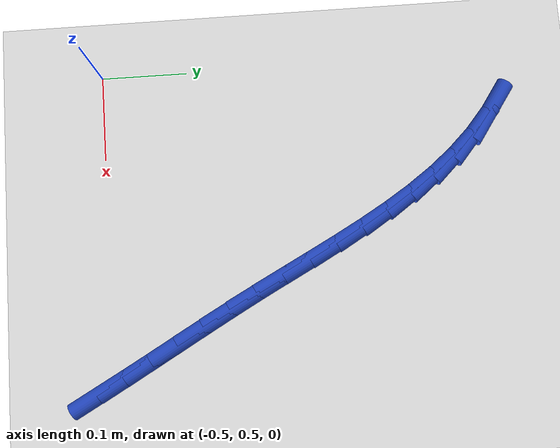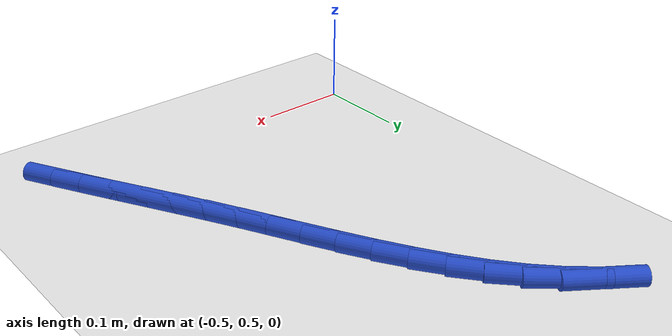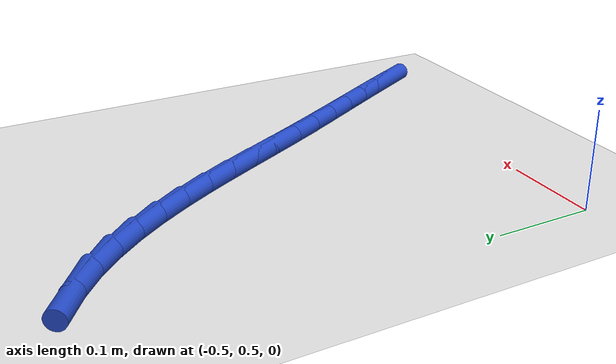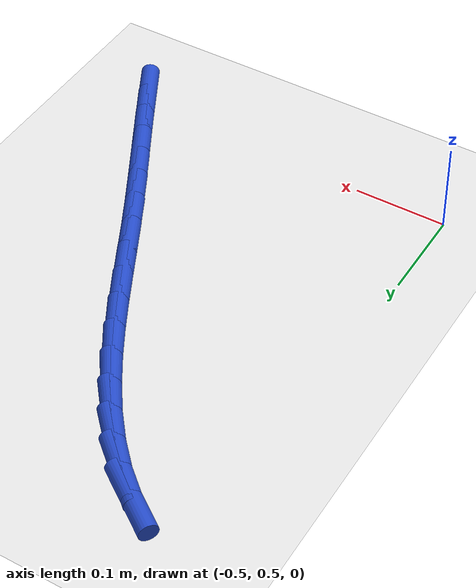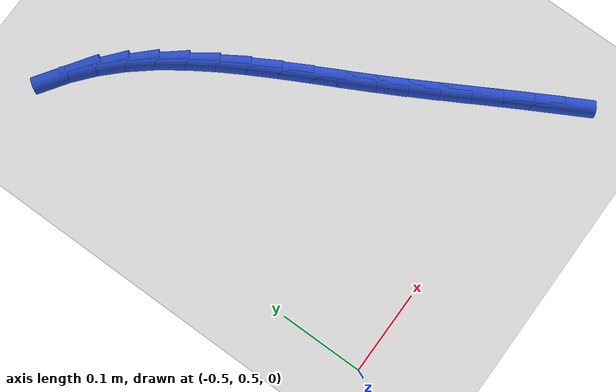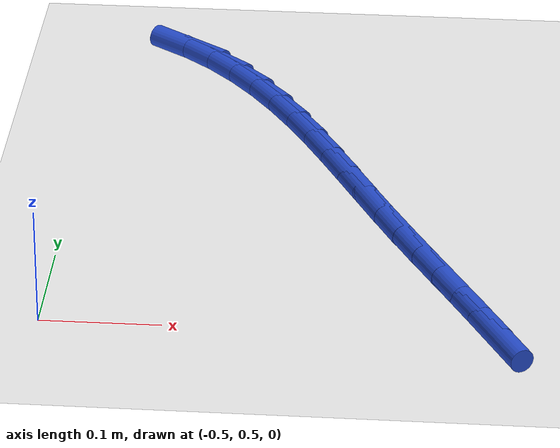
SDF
<sdf version="1.6">
 <world name="default">
  <model name="ground_plane">
   <static>1</static>
   <link name="link">
    <collision name="collision">
     <geometry><plane><normal>0 0 1</normal><size>100 100</size></plane></geometry>
     <surface><friction><ode><mu>100</mu><mu2>50</mu2></ode></friction></surface>
    </collision>
    <visual name="visual">
     <cast_shadows>0</cast_shadows>
     <geometry><plane><normal>0 0 1</normal><size>100 100</size></plane></geometry>
     <material>
      <script><uri>file://media/materials/scripts/gazebo.material</uri><name>Gazebo/WhiteGlow</name></script>
     </material>
    </visual>
   </link>
  </model>
  <model name="line">
   <link name="link_15">
    <pose>-0.13126435422582394 0.4900204493595128 0.01 0 1.57 -1.0696972753918943</pose>
    <collision name="collision">
     <geometry><cylinder><radius>0.01</radius><length>0.08</length></cylinder></geometry>
    </collision>
    <visual name="visual">
     <material>
      <script><name>Gazebo/Blue</name><uri>file://media/materials/scripts/gazebo.material</uri></script>
     </material>
     <geometry><cylinder><radius>0.01</radius><length>0.08</length></cylinder></geometry>
    </visual>
   </link>
   <link name="link_16">
    <pose>-0.147714450284334 0.5200536478910751 0.01 0 1.57 -1.0608263361486272</pose>
    <collision name="collision">
     <geometry><cylinder><radius>0.01</radius><length>0.08</length></cylinder></geometry>
    </collision>
    <visual name="visual">
     <material>
      <script><name>Gazebo/Blue</name><uri>file://media/materials/scripts/gazebo.material</uri></script>
     </material>
     <geometry><cylinder><radius>0.01</radius><length>0.08</length></cylinder></geometry>
    </visual>
   </link>
   <link name="link_17">
    <pose>-0.16452121825867005 0.5501022577757335 0.01 0 1.57 -1.0567298813475996</pose>
    <collision name="collision">
     <geometry><cylinder><radius>0.01</radius><length>0.08</length></cylinder></geometry>
    </collision>
    <visual name="visual">
     <material>
      <script><name>Gazebo/Blue</name><uri>file://media/materials/scripts/gazebo.material</uri></script>
     </material>
     <geometry><cylinder><radius>0.01</radius><length>0.08</length></cylinder></geometry>
    </visual>
   </link>
   <link name="link_18">
    <pose>-0.1815500475150231 0.5802572734480698 0.01 0 1.57 -1.057330188167922</pose>
    <collision name="collision">
     <geometry><cylinder><radius>0.01</radius><length>0.08</length></cylinder></geometry>
    </collision>
    <visual name="visual">
     <material>
      <script><name>Gazebo/Blue</name><uri>file://media/materials/scripts/gazebo.material</uri></script>
     </material>
     <geometry><cylinder><radius>0.01</radius><length>0.08</length></cylinder></geometry>
    </visual>
   </link>
   <link name="link_19">
    <pose>-0.1986663274195844 0.6106096893426662 0.01 0 1.57 -1.0625402167533928</pose>
    <collision name="collision">
     <geometry><cylinder><radius>0.01</radius><length>0.08</length></cylinder></geometry>
    </collision>
    <visual name="visual">
     <material>
      <script><name>Gazebo/Blue</name><uri>file://media/materials/scripts/gazebo.material</uri></script>
     </material>
     <geometry><cylinder><radius>0.01</radius><length>0.08</length></cylinder></geometry>
    </visual>
   </link>
   <link name="link_20">
    <pose>-0.2157354473385448 0.6412504998941044 0.01 0 1.57 -1.0722638826018733</pose>
    <collision name="collision">
     <geometry><cylinder><radius>0.01</radius><length>0.08</length></cylinder></geometry>
    </collision>
    <visual name="visual">
     <material>
      <script><name>Gazebo/Blue</name><uri>file://media/materials/scripts/gazebo.material</uri></script>
     </material>
     <geometry><cylinder><radius>0.01</radius><length>0.08</length></cylinder></geometry>
    </visual>
   </link>
   <link name="link_21">
    <pose>-0.23262279663809535 0.6722706995369664 0.01 0 1.57 -1.0849985773672532</pose>
    <collision name="collision">
     <geometry><cylinder><radius>0.01</radius><length>0.08</length></cylinder></geometry>
    </collision>
    <visual name="visual">
     <material>
      <script><name>Gazebo/Blue</name><uri>file://media/materials/scripts/gazebo.material</uri></script>
     </material>
     <geometry><cylinder><radius>0.01</radius><length>0.08</length></cylinder></geometry>
    </visual>
   </link>
   <link name="link_22">
    <pose>-0.24922937588767127 0.7037224121885397 0.01 0 1.57 -1.0908803957089008</pose>
    <collision name="collision">
     <geometry><cylinder><radius>0.01</radius><length>0.08</length></cylinder></geometry>
    </collision>
    <visual name="visual">
     <material>
      <script><name>Gazebo/Blue</name><uri>file://media/materials/scripts/gazebo.material</uri></script>
     </material>
     <geometry><cylinder><radius>0.01</radius><length>0.08</length></cylinder></geometry>
    </visual>
   </link>
   <link name="link_23">
    <pose>-0.26570850143330266 0.7353823527974587 0.01 0 1.57 -1.08578803404934</pose>
    <collision name="collision">
     <geometry><cylinder><radius>0.01</radius><length>0.08</length></cylinder></geometry>
    </collision>
    <visual name="visual">
     <material>
      <script><name>Gazebo/Blue</name><uri>file://media/materials/scripts/gazebo.material</uri></script>
     </material>
     <geometry><cylinder><radius>0.01</radius><length>0.08</length></cylinder></geometry>
    </visual>
   </link>
   <link name="link_24">
    <pose>-0.28232245939871015 0.7669082930798221 0.01 0 1.57 -1.0695760120328102</pose>
    <collision name="collision">
     <geometry><cylinder><radius>0.01</radius><length>0.08</length></cylinder></geometry>
    </collision>
    <visual name="visual">
     <material>
      <script><name>Gazebo/Blue</name><uri>file://media/materials/scripts/gazebo.material</uri></script>
     </material>
     <geometry><cylinder><radius>0.01</radius><length>0.08</length></cylinder></geometry>
    </visual>
   </link>
   <link name="link_25">
    <pose>-0.2993339675715128 0.7979575335798095 0.01 0 1.57 -1.0417918439166296</pose>
    <collision name="collision">
     <geometry><cylinder><radius>0.01</radius><length>0.08</length></cylinder></geometry>
    </collision>
    <visual name="visual">
     <material>
      <script><name>Gazebo/Blue</name><uri>file://media/materials/scripts/gazebo.material</uri></script>
     </material>
     <geometry><cylinder><radius>0.01</radius><length>0.08</length></cylinder></geometry>
    </visual>
   </link>
   <link name="link_26">
    <pose>-0.3170057437393292 0.8281873748415989 0.01 0 1.57 -1.001692889915784</pose>
    <collision name="collision">
     <geometry><cylinder><radius>0.01</radius><length>0.08</length></cylinder></geometry>
    </collision>
    <visual name="visual">
     <material>
      <script><name>Gazebo/Blue</name><uri>file://media/materials/scripts/gazebo.material</uri></script>
     </material>
     <geometry><cylinder><radius>0.01</radius><length>0.08</length></cylinder></geometry>
    </visual>
   </link>
   <link name="link_27">
    <pose>-0.3356005056897782 0.857255117409369 0.01 0 1.57 -0.9483246335831264</pose>
    <collision name="collision">
     <geometry><cylinder><radius>0.01</radius><length>0.08</length></cylinder></geometry>
    </collision>
    <visual name="visual">
     <material>
      <script><name>Gazebo/Blue</name><uri>file://media/materials/scripts/gazebo.material</uri></script>
     </material>
     <geometry><cylinder><radius>0.01</radius><length>0.08</length></cylinder></geometry>
    </visual>
   </link>
   <link name="link_28">
    <pose>-0.3553809712104785 0.8848180618272989 0.01 0 1.57 -0.8806806798011156</pose>
    <collision name="collision">
     <geometry><cylinder><radius>0.01</radius><length>0.08</length></cylinder></geometry>
    </collision>
    <visual name="visual">
     <material>
      <script><name>Gazebo/Blue</name><uri>file://media/materials/scripts/gazebo.material</uri></script>
     </material>
     <geometry><cylinder><radius>0.01</radius><length>0.08</length></cylinder></geometry>
    </visual>
   </link>
   <link name="link_29">
    <pose>-0.37660985808904895 0.9105335086395672 0.01 0 1.57 -0.7979923592808547</pose>
    <collision name="collision">
     <geometry><cylinder><radius>0.01</radius><length>0.08</length></cylinder></geometry>
    </collision>
    <visual name="visual">
     <material>
      <script><name>Gazebo/Blue</name><uri>file://media/materials/scripts/gazebo.material</uri></script>
     </material>
     <geometry><cylinder><radius>0.01</radius><length>0.08</length></cylinder></geometry>
    </visual>
   </link>
   <link name="link_30">
    <pose>-0.3995498841131082 0.9340587583903524 0.01 0 1.57 -0.7005278589553152</pose>
    <collision name="collision">
     <geometry><cylinder><radius>0.01</radius><length>0.08</length></cylinder></geometry>
    </collision>
    <visual name="visual">
     <material>
      <script><name>Gazebo/Blue</name><uri>file://media/materials/scripts/gazebo.material</uri></script>
     </material>
     <geometry><cylinder><radius>0.01</radius><length>0.08</length></cylinder></geometry>
    </visual>
   </link>
   <link name="link_31">
    <pose>-0.4244572214693882 0.9550604043275415 0.01 0 1.57 -0.6012012309865363</pose>
    <collision name="collision">
     <geometry><cylinder><radius>0.01</radius><length>0.08</length></cylinder></geometry>
    </collision>
    <visual name="visual">
     <material>
      <script><name>Gazebo/Blue</name><uri>file://media/materials/scripts/gazebo.material</uri></script>
     </material>
     <geometry><cylinder><radius>0.01</radius><length>0.08</length></cylinder></geometry>
    </visual>
   </link>
  </model>
 </world>
</sdf>
